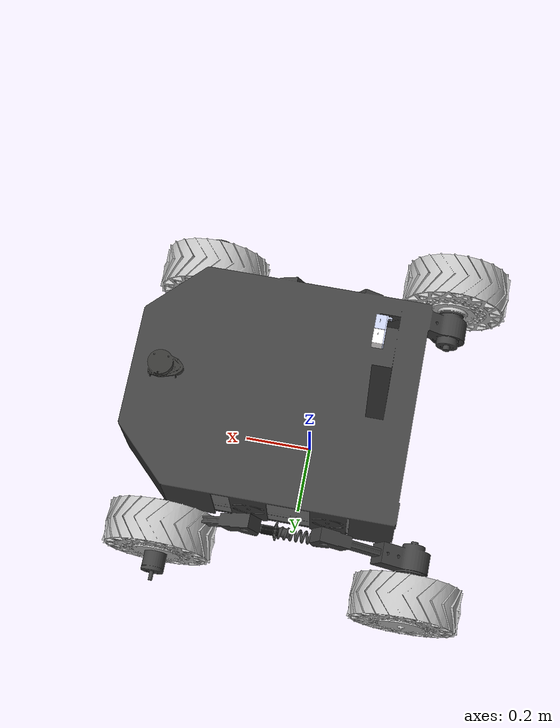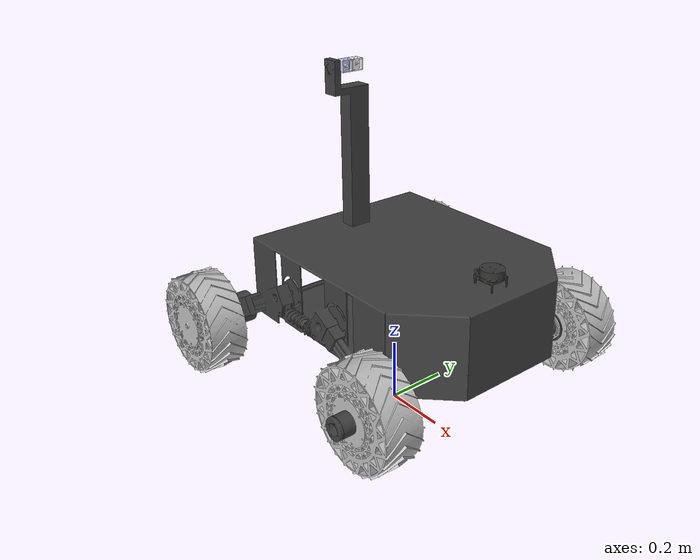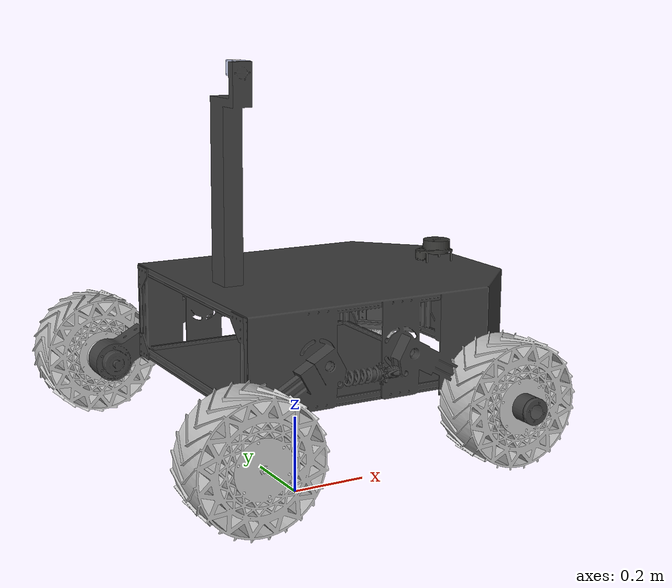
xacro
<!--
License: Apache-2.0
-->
<?xml version="1.0" encoding="utf-8"?>
<robot xmlns:xacro="http://www.ros.org/wiki/xacro" name="amr_ix1">

  <xacro:arg name="hardware" default="sim"/>
  <xacro:arg name="use_thermal" default="true"/>

  <xacro:include filename="$(find amr_ix1_description)/urdf/amr_ix1_base.xacro"/>
  <xacro:include filename="$(find amr_ix1_description)/urdf/amr_ix1_ros2_control.xacro"/>
  <xacro:include filename="$(find amr_ix1_description)/urdf/amr_ix1_gazebo.xacro"/>

  <xacro:amr_ix1_ros2_control hardware="$(arg hardware)"/>

  <xacro:if value="${'$(arg hardware)' == 'sim'}">
    <xacro:amr_ix1_gazebo use_thermal="$(arg use_thermal)"/>
  </xacro:if>

</robot>

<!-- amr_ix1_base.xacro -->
<!-- Robot body: materials, links, joints (CAD-derived). This is the ONLY file to replace
     when the new mechanical design is ready. See urdf/README.md for the names that must be kept. -->
<robot xmlns:xacro="http://www.ros.org/wiki/xacro">

  <!-- ── Materials ────────────────────────────────────────────────── -->
  <material name="dark_grey">
    <color rgba="0.251 0.251 0.251 1.0"/>
  </material>
  <material name="light_grey">
    <color rgba="0.753 0.753 0.753 1.0"/>
  </material>
  <material name="metal_grey">
    <color rgba="0.627 0.627 0.627 1.0"/>
  </material>
  <material name="dark_charcoal">
    <color rgba="0.212 0.212 0.204 1.0"/>
  </material>
  <material name="white">
    <color rgba="1.0 0.984 0.984 1.0"/>
  </material>
  <material name="blue_grey">
    <color rgba="0.792 0.820 0.933 1.0"/>
  </material>

  <link name="base_footprint"/>

  <joint name="base_footprint_joint" type="fixed">
    <origin xyz="0 0 0.3347" rpy="0 0 0"/>
    <parent link="base_footprint"/>
    <child  link="base_link"/>
  </joint>

  <!-- ================================================================
       BASE LINK
  ================================================================ -->
  <link name="base_link">
    <inertial>
      <origin xyz="0.0 0.0 0.0" rpy="0 0 0"/>
      <mass value="17.7024"/>
      <inertia
        ixx="0.212987" ixy="-4.778E-07" ixz="0.014399"
        iyy="0.266448"  iyz="0.002175"
        izz="0.358088"/>
    </inertial>
    <visual>
      <origin xyz="0 0 0" rpy="0 0 0"/>
      <geometry>
        <mesh filename="package://amr_ix1_description/meshes/visual/base_link.STL"/>
      </geometry>
      <material name="dark_grey"/>
    </visual>
    <collision>
      <origin xyz="0.10 0 0.11" rpy="0 0 0"/>
      <geometry>
        <box size="0.90 0.75 0.25"/>
      </geometry>
    </collision>
  </link>

  <!-- ================================================================
       FRONT RIGHT WHEEL
  ================================================================ -->
  <link name="F_R_W_Link">
    <inertial>
      <origin rpy="0 0 0" xyz="0 0 0"/>
      <mass value="1.5"/>
      <inertia ixx="0.0029" ixy="0.0" ixz="0.0" iyy="0.0029" iyz="0.0" izz="0.0042"/>
    </inertial>
    <visual>
      <origin xyz="0 0 0" rpy="0 0 0"/>
      <geometry>
        <mesh filename="package://amr_ix1_description/meshes/visual/F_R_W_Link.STL"/>
              <scale>0.001 0.001 0.001</scale>
      </geometry>
      <material name="light_grey"/>
    </visual>
    <collision>
	  <origin xyz="0 -0.025 0" rpy="1.5708 0 0"/>
	  <geometry>
	    <cylinder radius="0.155" length="0.12"/>
	  </geometry>
    </collision>
  </link>

  <joint name="F_R_W_joint" type="continuous">
    <origin xyz="0.36 -0.45 -0.0300" rpy="0 0 0"/>
    <parent link="base_link"/>
    <child  link="F_R_W_Link"/>
    <axis xyz="0 1 0"/>
    <dynamics damping="3.0" friction="2.0"/>
  </joint>

  <!-- ================================================================
       FRONT LEFT WHEEL
  ================================================================ -->
  <link name="F_L_W_Link">
    <inertial>
      <origin rpy="0 0 0" xyz="0 0 0"/>
      <mass value="1.5"/>
      <inertia ixx="0.0029" ixy="0.0" ixz="0.0" iyy="0.0029" iyz="0.0" izz="0.0042"/>
    </inertial>
    <visual>
      <origin xyz="0 0 0" rpy="0 0 0"/>
      <geometry>
        <mesh filename="package://amr_ix1_description/meshes/visual/F_L_W_Link.STL"/>
              <scale>0.001 0.001 0.001</scale>
      </geometry>
      <material name="light_grey"/>
    </visual>
    <collision>
	  <origin xyz="0 0.025 0" rpy="1.5708 0 0"/>
	  <geometry>
	    <cylinder radius="0.155" length="0.12"/>
	  </geometry>
    </collision>
  </link>

  <joint name="F_L_W_joint" type="continuous">
    <origin xyz="0.36 0.45 -0.0300" rpy="0 0 0"/>
    <parent link="base_link"/>
    <child  link="F_L_W_Link"/>
    <axis xyz="0 1 0"/>
    <dynamics damping="3.0" friction="2.0"/>
  </joint>

  <!-- ================================================================
       BACK RIGHT WHEEL
  ================================================================ -->
  <link name="B_R_W_Link">
    <inertial>
      <origin rpy="0 0 0" xyz="0 0 0"/>
      <mass value="1.5"/>
      <inertia ixx="0.0029" ixy="0.0" ixz="0.0" iyy="0.0029" iyz="0.0" izz="0.0042"/>
    </inertial>
    <visual>
      <origin xyz="0 0 0" rpy="0 0 0"/>
      <geometry>
        <mesh filename="package://amr_ix1_description/meshes/visual/B_R_W_Link.STL"/>
              <scale>0.001 0.001 0.001</scale>
      </geometry>
      <material name="light_grey"/>
    </visual>
    <collision>
	  <origin xyz="0 -0.025 0" rpy="1.5708 0 0"/>
	  <geometry>
	    <cylinder radius="0.155" length="0.12"/>
	  </geometry>
    </collision>
  </link>

  <joint name="B_R_W_joint" type="continuous">
    <origin xyz="-0.36 -0.45 -0.0300" rpy="0 0 0"/>
    <parent link="base_link"/>
    <child  link="B_R_W_Link"/>
    <axis xyz="0 1 0"/>
    <dynamics damping="3.0" friction="2.0"/>
  </joint>

  <!-- ================================================================
       BACK LEFT WHEEL
  ================================================================ -->
  <link name="B_L_W_Link">
    <inertial>
      <origin rpy="0 0 0" xyz="0 0 0"/>
      <mass value="1.5"/>
      <inertia ixx="0.0029" ixy="0.0" ixz="0.0" iyy="0.0029" iyz="0.0" izz="0.0042"/>
    </inertial>
    <visual>
      <origin xyz="0 0 0" rpy="0 0 0"/>
      <geometry>
        <mesh filename="package://amr_ix1_description/meshes/visual/B_L_W_Link.STL"/>
              <scale>0.001 0.001 0.001</scale>
      </geometry>
      <material name="light_grey"/>
    </visual>
    <collision>
	  <origin xyz="0 0.025 0" rpy="1.5708 0 0"/>
	  <geometry>
	    <cylinder radius="0.155" length="0.12"/>
	  </geometry>
    </collision>
  </link>

  <joint name="B_L_W_joint" type="continuous">
    <origin xyz="-0.36 0.45 -0.0300" rpy="0 0 0"/>
    <parent link="base_link"/>
    <child  link="B_L_W_Link"/>
    <axis xyz="0 1 0"/>
    <dynamics damping="3.0" friction="2.0"/>
  </joint>

  <!-- ================================================================
       IMU
  ================================================================ -->
  <link name="imu_Link">
    <inertial>
      <origin xyz="-0.000400 0.000132 0.006812" rpy="0 0 0"/>
      <mass value="0.010837"/>
      <inertia
        ixx="9.951E-07" ixy="2.081E-08" ixz="1.091E-08"
        iyy="9.555E-07"  iyz="-3.252E-09"
        izz="1.642E-06"/>
    </inertial>
    <visual>
      <origin xyz="0 0 0" rpy="3.14159 0 0"/>
      <geometry>
        <mesh filename="package://amr_ix1_description/meshes/visual/imu_Link.STL"/>
      </geometry>
      <material name="metal_grey"/>
    </visual>
    <collision>
      <origin xyz="0 0 0" rpy="3.14159 0 0"/>
      <geometry>
        <mesh filename="package://amr_ix1_description/meshes/collision/imu_Link.STL"/>
      </geometry>
    </collision>
  </link>

  <joint name="imu_joint" type="fixed">
    <origin xyz="0.0 0.0 0.0" rpy="0 0 0"/>
    <parent link="base_link"/>
    <child  link="imu_Link"/>
  </joint>

  <!-- ================================================================
       LIDAR
  ================================================================ -->
  <link name="laser_Link">
    <inertial>
      <origin xyz="-0.005720 0.001226 -0.009051" rpy="0 0 0"/>
      <mass value="0.141654"/>
      <inertia
        ixx="5.691E-05" ixy="-2.879E-07" ixz="-1.248E-05"
        iyy="8.932E-05"  iyz="7.219E-07"
        izz="1.087E-04"/>
    </inertial>
    <visual>
      <origin xyz="0 0 0" rpy="0 0 0"/>
      <geometry>
        <mesh filename="package://amr_ix1_description/meshes/visual/laser_Link.STL"/>
      </geometry>
      <material name="dark_charcoal"/>
    </visual>
    <collision>
      <origin xyz="0 0 0" rpy="0 0 0"/>
      <geometry>
        <mesh filename="package://amr_ix1_description/meshes/collision/laser_Link.STL"/>
      </geometry>
    </collision>
  </link>

  <joint name="laser_joint" type="fixed">
    <origin xyz="0.415447680695362 -0.00758871084657819 0.27756000072765" rpy="0 0 0"/>
    <parent link="base_link"/>
    <child  link="laser_Link"/>
  </joint>

  <!-- ================================================================
       CAMERA STAND
  ================================================================ -->
  <link name="cam_stand_Link">
    <inertial>
      <origin xyz="0.005597 0.032884 -0.000945" rpy="0 0 0"/>
      <mass value="0.008532"/>
      <inertia
        ixx="5.125E-06" ixy="-1.127E-07" ixz="2.108E-09"
        iyy="9.300E-07"  iyz="1.718E-08"
        izz="4.259E-06"/>
    </inertial>
    <visual>
      <origin xyz="0 0 0" rpy="0 0 0"/>
      <geometry>
        <mesh filename="package://amr_ix1_description/meshes/visual/cam_stand_Link.STL"/>
      </geometry>
      <material name="blue_grey"/>
    </visual>
    <collision>
      <origin xyz="0 0 0" rpy="0 0 0"/>
      <geometry>
        <mesh filename="package://amr_ix1_description/meshes/collision/cam_stand_Link.STL"/>
      </geometry>
    </collision>
  </link>

  <joint name="cam_stand_joint" type="revolute">
    <origin xyz="-0.18673 -0.066898 0.75053" rpy="0 0 0"/>
    <parent link="base_link"/>
    <child  link="cam_stand_Link"/>
    <axis xyz="0 1 0"/>
    <limit lower="-0.7854" upper="0.2" effort="10.0" velocity="1.5" />
    <dynamics damping="0.1" friction="0.1"/>
  </joint>

  <!-- ================================================================
       CAMERA
  ================================================================ -->
  <link name="camera_Link">
    <inertial>
      <origin xyz="-0.010605 -5.056E-05 -0.001198" rpy="0 0 0"/>
      <mass value="0.025772"/>
      <inertia
        ixx="6.271E-06" ixy="1.006E-11" ixz="3.897E-09"
        iyy="4.255E-06"  iyz="1.509E-10"
        izz="4.285E-06"/>
    </inertial>
    <visual>
      <origin xyz="0 0 0" rpy="0 0 0"/>
      <geometry>
        <mesh filename="package://amr_ix1_description/meshes/visual/camera_Link.STL"/>
      </geometry>
      <material name="white"/>
    </visual>
    <collision>
      <origin xyz="0 0 0" rpy="0 0 0"/>
      <geometry>
        <mesh filename="package://amr_ix1_description/meshes/collision/camera_Link.STL"/>
      </geometry>
    </collision>
  </link>

  <joint name="camera_joint" type="fixed">
    <origin xyz="0.028695 0.053607 0.000157" rpy="0 0 0"/>
    <parent link="cam_stand_Link"/>
    <child  link="camera_Link"/>
  </joint>

  <!-- ================================================================
       THERMAL CAMERA
  ================================================================ -->
  <link name="thermal_link">
    <inertial>
      <origin xyz="-0.009412 0.000127 -0.000586" rpy="0 0 0"/>
      <mass value="0.024852"/>
      <inertia
        ixx="6.238E-06" ixy="1.086E-11" ixz="3.867E-09"
        iyy="4.239E-06"  iyz="-6.644E-11"
        izz="4.273E-06"/>
    </inertial>
    <visual>
      <origin xyz="0 0 0" rpy="0 0 0"/>
      <geometry>
        <mesh filename="package://amr_ix1_description/meshes/visual/thermal_link.STL"/>
      </geometry>
      <material name="blue_grey"/>
    </visual>
    <collision>
      <origin xyz="0 0 0" rpy="0 0 0"/>
      <geometry>
        <mesh filename="package://amr_ix1_description/meshes/collision/thermal_link.STL"/>
      </geometry>
    </collision>
  </link>

  <joint name="thermal_joint" type="fixed">
    <origin xyz="0.027189 0.016420 -0.000526" rpy="0 0 0"/>
    <parent link="cam_stand_Link"/>
    <child  link="thermal_link"/>
  </joint>

</robot>
